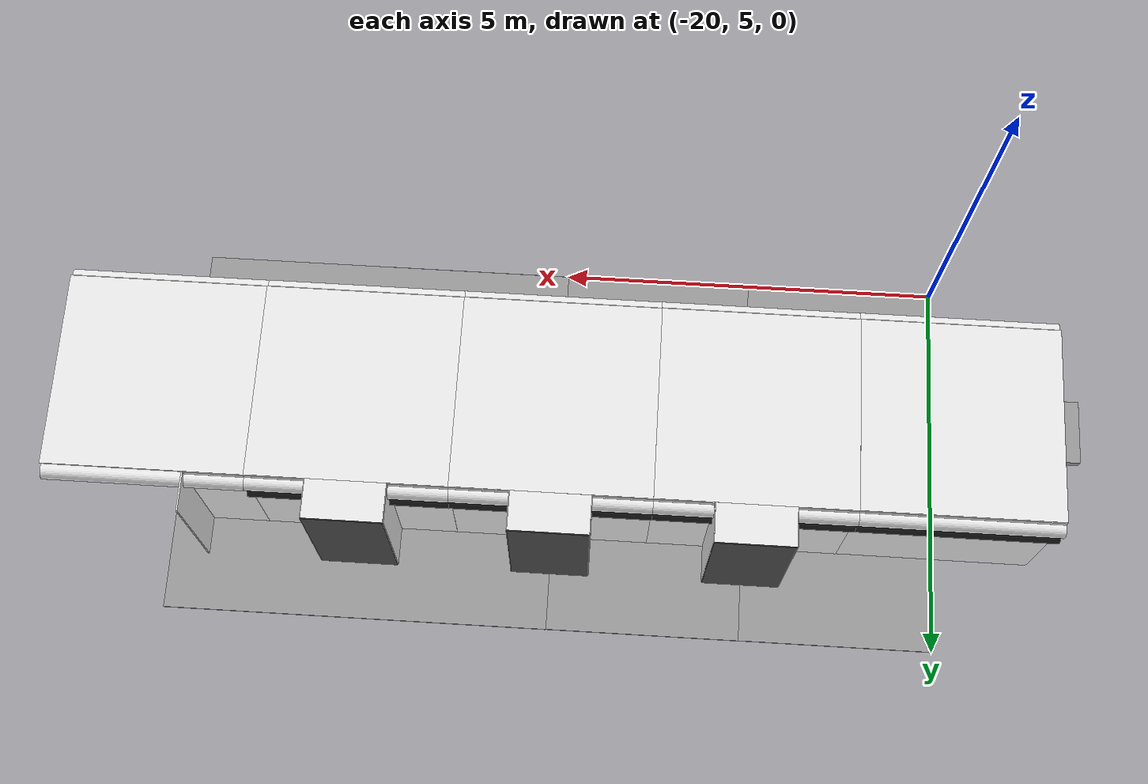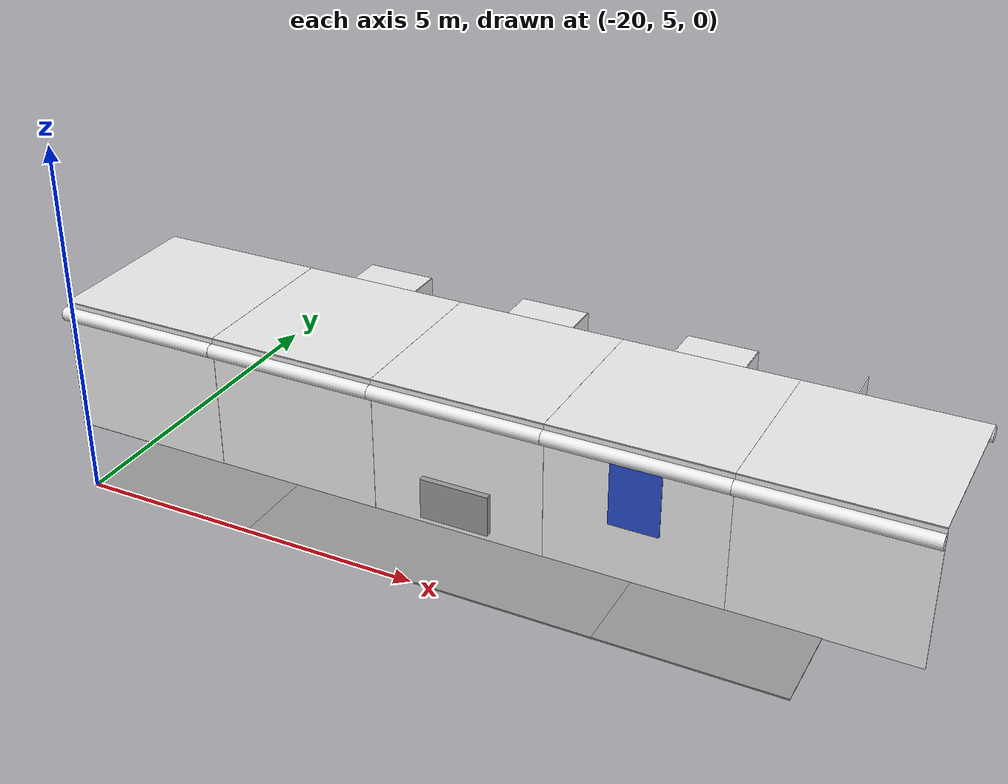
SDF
<sdf version="1.6">
 <world name="default">
  <model name="wall_left_-4_3_0_1">
   <static>1</static>
   <pose>-10.0 6.25 1.0 0.0 0.0 3.14</pose>
   <link name="link">
    <collision name="collision"><geometry><box><size>2.5 0.02 2.0</size></box></geometry></collision>
    <visual name="visual">
     <material>
      <script><name>Gazebo/White</name><uri>file://media/materials/scripts/gazebo.material</uri></script>
     </material>
     <geometry><box><size>2.5 0.02 2.0</size></box></geometry>
    </visual>
   </link>
  </model>
  <model name="wall_top_-4_3_0_1">
   <static>1</static>
   <pose>-10.0 7.5 2.0 1.57 0.0 1.57</pose>
   <link name="link">
    <collision name="collision"><geometry><box><size>2.5 0.02 2.5</size></box></geometry></collision>
    <visual name="visual">
     <material>
      <script><name>Gazebo/White</name><uri>file://media/materials/scripts/gazebo.material</uri></script>
     </material>
     <geometry><box><size>2.5 0.02 2.5</size></box></geometry>
    </visual>
   </link>
  </model>
  <model name="ceiling_1_-4_3_0_1">
   <pose>-10.0 7.5 1.7 0.0 0.0 1.57</pose>
   <link name="link_1">
    <visual name="visual">
     <geometry><box><size>0.8 1 0.1</size></box></geometry>
     <material>
      <script><uri>file://media/materials/scripts/gazebo.material</uri><name>Gazebo/Grey</name></script>
     </material>
    </visual>
    <collision name="collision"><geometry><box><size>0.8 1 0.1</size></box></geometry></collision>
   </link>
   <static>1</static>
  </model>
  <model name="ceiling_1_-4_3_2_1">
   <pose>-11.0 7.5 1.7 0.0 0.0 1.57</pose>
   <link name="link_1">
    <visual name="visual">
     <geometry><box><size>0.8 1 0.1</size></box></geometry>
     <material>
      <script><uri>file://media/materials/scripts/gazebo.material</uri><name>Gazebo/Grey</name></script>
     </material>
    </visual>
    <collision name="collision"><geometry><box><size>0.8 1 0.1</size></box></geometry></collision>
   </link>
   <static>1</static>
  </model>
  <model name="white_pipe_left_-4_3_0_1">
   <static>1</static>
   <pose>-10.0 7.5 1.84 0.0 0.0 1.57</pose>
   <link name="link_0">
    <visual name="visual">
     <pose>-1.3 0 0 1.57 0 0</pose>
     <geometry><cylinder><radius>0.1</radius><length>2.5</length></cylinder></geometry>
     <material>
      <script><uri>file://media/materials/scripts/gazebo.material</uri><name>Gazebo/White</name></script>
     </material>
    </visual>
    <collision name="collision">
     <pose>-1.3 0 0 1.57 0 0</pose>
     <geometry><cylinder><radius>0.1</radius><length>2.5</length></cylinder></geometry>
    </collision>
   </link>
  </model>
  <model name="white_pipe_right_-4_3_0_1">
   <static>1</static>
   <pose>-10.0 7.5 1.84 0.0 0.0 1.57</pose>
   <link name="link_0">
    <visual name="visual">
     <pose>1.3 0 0 1.57 0 0</pose>
     <geometry><cylinder><radius>0.1</radius><length>2.5</length></cylinder></geometry>
     <material>
      <script><uri>file://media/materials/scripts/gazebo.material</uri><name>Gazebo/White</name></script>
     </material>
    </visual>
    <collision name="collision">
     <pose>1.3 0 0 1.57 0 0</pose>
     <geometry><cylinder><radius>0.1</radius><length>2.5</length></cylinder></geometry>
    </collision>
   </link>
  </model>
  <model name="wall_right_front_left_-4_3_0_1">
   <static>1</static>
   <pose>-10.875 8.75 1.0 0.0 0.0 3.14</pose>
   <link name="link">
    <collision name="collision"><geometry><box><size>0.75 0.02 2.0</size></box></geometry></collision>
    <visual name="visual">
     <material>
      <script><name>Gazebo/White</name><uri>file://media/materials/scripts/gazebo.material</uri></script>
     </material>
     <geometry><box><size>0.75 0.02 2.0</size></box></geometry>
    </visual>
   </link>
  </model>
  <model name="wall_right_inside_left_-4_3_0_1">
   <static>1</static>
   <pose>-10.5 9.0 1.0 0.0 0.0 1.57</pose>
   <link name="link">
    <collision name="collision"><geometry><box><size>0.5 0.02 2</size></box></geometry></collision>
    <visual name="visual">
     <material>
      <script><name>Gazebo/White</name><uri>file://media/materials/scripts/gazebo.material</uri></script>
     </material>
     <geometry><box><size>0.5 0.02 2</size></box></geometry>
    </visual>
   </link>
  </model>
  <model name="wall_left_-5_3_0_1">
   <static>1</static>
   <pose>-12.5 6.25 1.0 0.0 0.0 3.14</pose>
   <link name="link">
    <collision name="collision"><geometry><box><size>2.5 0.02 2.0</size></box></geometry></collision>
    <visual name="visual">
     <material>
      <script><name>Gazebo/White</name><uri>file://media/materials/scripts/gazebo.material</uri></script>
     </material>
     <geometry><box><size>2.5 0.02 2.0</size></box></geometry>
    </visual>
   </link>
  </model>
  <model name="wall_top_-5_3_0_1">
   <static>1</static>
   <pose>-12.5 7.5 2.0 1.57 0.0 1.57</pose>
   <link name="link">
    <collision name="collision"><geometry><box><size>2.5 0.02 2.5</size></box></geometry></collision>
    <visual name="visual">
     <material>
      <script><name>Gazebo/White</name><uri>file://media/materials/scripts/gazebo.material</uri></script>
     </material>
     <geometry><box><size>2.5 0.02 2.5</size></box></geometry>
    </visual>
   </link>
  </model>
  <model name="ceiling_1_-5_3_0_1">
   <pose>-12.5 7.5 1.7 0.0 0.0 1.57</pose>
   <link name="link_1">
    <visual name="visual">
     <geometry><box><size>0.8 1 0.1</size></box></geometry>
     <material>
      <script><uri>file://media/materials/scripts/gazebo.material</uri><name>Gazebo/Grey</name></script>
     </material>
    </visual>
    <collision name="collision"><geometry><box><size>0.8 1 0.1</size></box></geometry></collision>
   </link>
   <static>1</static>
  </model>
  <model name="ceiling_1_-5_3_1_1">
   <pose>-11.5 7.5 1.7 0.0 0.0 1.57</pose>
   <link name="link_1">
    <visual name="visual">
     <geometry><box><size>0.8 1 0.1</size></box></geometry>
     <material>
      <script><uri>file://media/materials/scripts/gazebo.material</uri><name>Gazebo/Grey</name></script>
     </material>
    </visual>
    <collision name="collision"><geometry><box><size>0.8 1 0.1</size></box></geometry></collision>
   </link>
   <static>1</static>
  </model>
  <model name="ceiling_1_-5_3_2_1">
   <pose>-13.5 7.5 1.7 0.0 0.0 1.57</pose>
   <link name="link_1">
    <visual name="visual">
     <geometry><box><size>0.8 1 0.1</size></box></geometry>
     <material>
      <script><uri>file://media/materials/scripts/gazebo.material</uri><name>Gazebo/Grey</name></script>
     </material>
    </visual>
    <collision name="collision"><geometry><box><size>0.8 1 0.1</size></box></geometry></collision>
   </link>
   <static>1</static>
  </model>
  <model name="white_pipe_left_-5_3_0_1">
   <static>1</static>
   <pose>-12.5 7.5 1.84 0.0 0.0 1.57</pose>
   <link name="link_0">
    <visual name="visual">
     <pose>-1.3 0 0 1.57 0 0</pose>
     <geometry><cylinder><radius>0.1</radius><length>2.5</length></cylinder></geometry>
     <material>
      <script><uri>file://media/materials/scripts/gazebo.material</uri><name>Gazebo/White</name></script>
     </material>
    </visual>
    <collision name="collision">
     <pose>-1.3 0 0 1.57 0 0</pose>
     <geometry><cylinder><radius>0.1</radius><length>2.5</length></cylinder></geometry>
    </collision>
   </link>
  </model>
  <model name="white_pipe_right_-5_3_0_1">
   <static>1</static>
   <pose>-12.5 7.5 1.84 0.0 0.0 1.57</pose>
   <link name="link_0">
    <visual name="visual">
     <pose>1.3 0 0 1.57 0 0</pose>
     <geometry><cylinder><radius>0.1</radius><length>2.5</length></cylinder></geometry>
     <material>
      <script><uri>file://media/materials/scripts/gazebo.material</uri><name>Gazebo/White</name></script>
     </material>
    </visual>
    <collision name="collision">
     <pose>1.3 0 0 1.57 0 0</pose>
     <geometry><cylinder><radius>0.1</radius><length>2.5</length></cylinder></geometry>
    </collision>
   </link>
  </model>
  <model name="black_pipe_right_-5_3_0_1">
   <static>1</static>
   <pose>-12.5 7.5 1.84 0.0 0.0 1.57</pose>
   <link name="link_0">
    <visual name="visual">
     <pose>1.3 0 -0.25 1.57 0 0</pose>
     <geometry><cylinder><radius>0.1</radius><length>2.5</length></cylinder></geometry>
     <material>
      <script><uri>file://media/materials/scripts/gazebo.material</uri><name>Gazebo/Black</name></script>
     </material>
    </visual>
    <collision name="collision">
     <pose>1.3 0 -0.25 1.57 0 0</pose>
     <geometry><cylinder><radius>0.1</radius><length>2.5</length></cylinder></geometry>
    </collision>
   </link>
  </model>
  <model name="grey_pipe_right_-5_3_0_1">
   <static>1</static>
   <pose>-12.5 7.5 1.84 0.0 0.0 1.57</pose>
   <link name="link_0">
    <visual name="visual">
     <pose>0.7 0 0 1.57 0 0</pose>
     <geometry><cylinder><radius>0.02</radius><length>2.5</length></cylinder></geometry>
     <material>
      <script><uri>file://media/materials/scripts/gazebo.material</uri><name>Gazebo/Grey</name></script>
     </material>
    </visual>
    <collision name="collision">
     <pose>0.7 0 0 1.57 0 0</pose>
     <geometry><cylinder><radius>0.02</radius><length>2.5</length></cylinder></geometry>
    </collision>
   </link>
  </model>
  <model name="red_pipe_right_-5_3_0_1">
   <static>1</static>
   <pose>-12.5 7.5 1.84 0.0 0.0 1.57</pose>
   <link name="link_0">
    <visual name="visual">
     <pose>0.85 0 0 1.57 0 0</pose>
     <geometry><cylinder><radius>0.02</radius><length>2.5</length></cylinder></geometry>
     <material>
      <script><uri>file://media/materials/scripts/gazebo.material</uri><name>Gazebo/Red</name></script>
     </material>
    </visual>
    <collision name="collision">
     <pose>0.85 0 0 1.57 0 0</pose>
     <geometry><cylinder><radius>0.02</radius><length>2.5</length></cylinder></geometry>
    </collision>
   </link>
  </model>
  <model name="blue_pipe_right_-5_3_0_1">
   <static>1</static>
   <pose>-12.5 7.5 1.84 0.0 0.0 1.57</pose>
   <link name="link_0">
    <visual name="visual">
     <pose>1 0 0 1.57 0 0</pose>
     <geometry><cylinder><radius>0.02</radius><length>2.5</length></cylinder></geometry>
     <material>
      <script><uri>file://media/materials/scripts/gazebo.material</uri><name>Gazebo/Blue</name></script>
     </material>
    </visual>
    <collision name="collision">
     <pose>1 0 0 1.57 0 0</pose>
     <geometry><cylinder><radius>0.02</radius><length>2.5</length></cylinder></geometry>
    </collision>
   </link>
  </model>
  <model name="panel_-5_3_0_1">
   <static>1</static>
   <pose>-12.5 6.25 1.3 0.0 0.0 1.57</pose>
   <link name="link">
    <collision name="collision"><geometry><box><size>0.04 0.7 1</size></box></geometry></collision>
    <visual name="visual">
     <material>
      <script><name>Gazebo/Blue</name><uri>file://media/materials/scripts/gazebo.material</uri></script>
     </material>
     <geometry><box><size>0.04 0.7 1</size></box></geometry>
    </visual>
   </link>
  </model>
  <model name="wall_right_front_left_-5_3_0_1">
   <static>1</static>
   <pose>-13.375 8.75 1.0 0.0 0.0 3.14</pose>
   <link name="link">
    <collision name="collision"><geometry><box><size>0.75 0.02 2.0</size></box></geometry></collision>
    <visual name="visual">
     <material>
      <script><name>Gazebo/White</name><uri>file://media/materials/scripts/gazebo.material</uri></script>
     </material>
     <geometry><box><size>0.75 0.02 2.0</size></box></geometry>
    </visual>
   </link>
  </model>
  <model name="wall_right_front_right_-5_3_0_1">
   <static>1</static>
   <pose>-11.625 8.75 1.0 0.0 0.0 3.14</pose>
   <link name="link">
    <collision name="collision"><geometry><box><size>0.75 0.02 2.0</size></box></geometry></collision>
    <visual name="visual">
     <material>
      <script><name>Gazebo/White</name><uri>file://media/materials/scripts/gazebo.material</uri></script>
     </material>
     <geometry><box><size>0.75 0.02 2.0</size></box></geometry>
    </visual>
   </link>
  </model>
  <model name="wall_right_front_up_-5_3_0_1">
   <static>1</static>
   <pose>-12.5 8.75 2.0 0.0 0.0 3.14</pose>
   <link name="link">
    <collision name="collision"><geometry><box><size>1.0 0.02 0.001</size></box></geometry></collision>
    <visual name="visual">
     <material>
      <script><name>Gazebo/White</name><uri>file://media/materials/scripts/gazebo.material</uri></script>
     </material>
     <geometry><box><size>1.0 0.02 0.001</size></box></geometry>
    </visual>
   </link>
  </model>
  <model name="wall_right_inside_back_-5_3_0_1">
   <static>1</static>
   <pose>-12.5 9.25 1.0 0.0 0.0 3.14</pose>
   <link name="link">
    <collision name="collision"><geometry><box><size>1 0.02 2</size></box></geometry></collision>
    <visual name="visual">
     <material>
      <script><name>Gazebo/DarkGrey</name><uri>file://media/materials/scripts/gazebo.material</uri></script>
     </material>
     <geometry><box><size>1 0.02 2</size></box></geometry>
    </visual>
   </link>
  </model>
  <model name="wall_right_inside_left_-5_3_0_1">
   <static>1</static>
   <pose>-13.0 9.0 1.0 0.0 0.0 1.57</pose>
   <link name="link">
    <collision name="collision"><geometry><box><size>0.5 0.02 2</size></box></geometry></collision>
    <visual name="visual">
     <material>
      <script><name>Gazebo/White</name><uri>file://media/materials/scripts/gazebo.material</uri></script>
     </material>
     <geometry><box><size>0.5 0.02 2</size></box></geometry>
    </visual>
   </link>
  </model>
  <model name="wall_right_inside_right_-5_3_0_1">
   <static>1</static>
   <pose>-12.0 9.0 1.0 0.0 0.0 1.57</pose>
   <link name="link">
    <collision name="collision"><geometry><box><size>0.5 0.02 2</size></box></geometry></collision>
    <visual name="visual">
     <material>
      <script><name>Gazebo/White</name><uri>file://media/materials/scripts/gazebo.material</uri></script>
     </material>
     <geometry><box><size>0.5 0.02 2</size></box></geometry>
    </visual>
   </link>
  </model>
  <model name="wall_right_inside_top_-5_3_0_1">
   <static>1</static>
   <pose>-12.5 9.0 2.0 1.57 0.0 3.14</pose>
   <link name="link">
    <collision name="collision"><geometry><box><size>1 0.02 0.5</size></box></geometry></collision>
    <visual name="visual">
     <material>
      <script><name>Gazebo/White</name><uri>file://media/materials/scripts/gazebo.material</uri></script>
     </material>
     <geometry><box><size>1 0.02 0.5</size></box></geometry>
    </visual>
   </link>
  </model>
  <model name="wall_bottom_-5_3_0_1">
   <static>1</static>
   <pose>-12.5 7.5 0.0 0.0 0.0 1.57</pose>
   <link name="link">
    <collision name="collision"><geometry><box><size>5.0 5.0 0.02</size></box></geometry></collision>
    <visual name="visual">
     <material>
      <script><name>Gazebo/Grey</name><uri>file://media/materials/scripts/gazebo.material</uri></script>
     </material>
     <geometry><box><size>5.0 5.0 0.02</size></box></geometry>
    </visual>
   </link>
  </model>
  <model name="wall_left_-6_3_0_1">
   <static>1</static>
   <pose>-15.0 6.25 1.0 0.0 0.0 3.14</pose>
   <link name="link">
    <collision name="collision"><geometry><box><size>2.5 0.02 2.0</size></box></geometry></collision>
    <visual name="visual">
     <material>
      <script><name>Gazebo/White</name><uri>file://media/materials/scripts/gazebo.material</uri></script>
     </material>
     <geometry><box><size>2.5 0.02 2.0</size></box></geometry>
    </visual>
   </link>
  </model>
  <model name="wall_top_-6_3_0_1">
   <static>1</static>
   <pose>-15.0 7.5 2.0 1.57 0.0 1.57</pose>
   <link name="link">
    <collision name="collision"><geometry><box><size>2.5 0.02 2.5</size></box></geometry></collision>
    <visual name="visual">
     <material>
      <script><name>Gazebo/White</name><uri>file://media/materials/scripts/gazebo.material</uri></script>
     </material>
     <geometry><box><size>2.5 0.02 2.5</size></box></geometry>
    </visual>
   </link>
  </model>
  <model name="ceiling_1_-6_3_0_1">
   <pose>-15.0 7.5 1.7 0.0 0.0 1.57</pose>
   <link name="link_1">
    <visual name="visual">
     <geometry><box><size>0.8 1 0.1</size></box></geometry>
     <material>
      <script><uri>file://media/materials/scripts/gazebo.material</uri><name>Gazebo/Grey</name></script>
     </material>
    </visual>
    <collision name="collision"><geometry><box><size>0.8 1 0.1</size></box></geometry></collision>
   </link>
   <static>1</static>
  </model>
  <model name="ceiling_1_-6_3_1_1">
   <pose>-14.0 7.5 1.7 0.0 0.0 1.57</pose>
   <link name="link_1">
    <visual name="visual">
     <geometry><box><size>0.8 1 0.1</size></box></geometry>
     <material>
      <script><uri>file://media/materials/scripts/gazebo.material</uri><name>Gazebo/Grey</name></script>
     </material>
    </visual>
    <collision name="collision"><geometry><box><size>0.8 1 0.1</size></box></geometry></collision>
   </link>
   <static>1</static>
  </model>
  <model name="ceiling_1_-6_3_2_1">
   <pose>-16.0 7.5 1.7 0.0 0.0 1.57</pose>
   <link name="link_1">
    <visual name="visual">
     <geometry><box><size>0.8 1 0.1</size></box></geometry>
     <material>
      <script><uri>file://media/materials/scripts/gazebo.material</uri><name>Gazebo/Grey</name></script>
     </material>
    </visual>
    <collision name="collision"><geometry><box><size>0.8 1 0.1</size></box></geometry></collision>
   </link>
   <static>1</static>
  </model>
  <model name="white_pipe_left_-6_3_0_1">
   <static>1</static>
   <pose>-15.0 7.5 1.84 0.0 0.0 1.57</pose>
   <link name="link_0">
    <visual name="visual">
     <pose>-1.3 0 0 1.57 0 0</pose>
     <geometry><cylinder><radius>0.1</radius><length>2.5</length></cylinder></geometry>
     <material>
      <script><uri>file://media/materials/scripts/gazebo.material</uri><name>Gazebo/White</name></script>
     </material>
    </visual>
    <collision name="collision">
     <pose>-1.3 0 0 1.57 0 0</pose>
     <geometry><cylinder><radius>0.1</radius><length>2.5</length></cylinder></geometry>
    </collision>
   </link>
  </model>
  <model name="white_pipe_right_-6_3_0_1">
   <static>1</static>
   <pose>-15.0 7.5 1.84 0.0 0.0 1.57</pose>
   <link name="link_0">
    <visual name="visual">
     <pose>1.3 0 0 1.57 0 0</pose>
     <geometry><cylinder><radius>0.1</radius><length>2.5</length></cylinder></geometry>
     <material>
      <script><uri>file://media/materials/scripts/gazebo.material</uri><name>Gazebo/White</name></script>
     </material>
    </visual>
    <collision name="collision">
     <pose>1.3 0 0 1.57 0 0</pose>
     <geometry><cylinder><radius>0.1</radius><length>2.5</length></cylinder></geometry>
    </collision>
   </link>
  </model>
  <model name="black_pipe_right_-6_3_0_1">
   <static>1</static>
   <pose>-15.0 7.5 1.84 0.0 0.0 1.57</pose>
   <link name="link_0">
    <visual name="visual">
     <pose>1.3 0 -0.25 1.57 0 0</pose>
     <geometry><cylinder><radius>0.1</radius><length>2.5</length></cylinder></geometry>
     <material>
      <script><uri>file://media/materials/scripts/gazebo.material</uri><name>Gazebo/Black</name></script>
     </material>
    </visual>
    <collision name="collision">
     <pose>1.3 0 -0.25 1.57 0 0</pose>
     <geometry><cylinder><radius>0.1</radius><length>2.5</length></cylinder></geometry>
    </collision>
   </link>
  </model>
  <model name="grey_pipe_right_-6_3_0_1">
   <static>1</static>
   <pose>-15.0 7.5 1.84 0.0 0.0 1.57</pose>
   <link name="link_0">
    <visual name="visual">
     <pose>0.7 0 0 1.57 0 0</pose>
     <geometry><cylinder><radius>0.02</radius><length>2.5</length></cylinder></geometry>
     <material>
      <script><uri>file://media/materials/scripts/gazebo.material</uri><name>Gazebo/Grey</name></script>
     </material>
    </visual>
    <collision name="collision">
     <pose>0.7 0 0 1.57 0 0</pose>
     <geometry><cylinder><radius>0.02</radius><length>2.5</length></cylinder></geometry>
    </collision>
   </link>
  </model>
  <model name="red_pipe_right_-6_3_0_1">
   <static>1</static>
   <pose>-15.0 7.5 1.84 0.0 0.0 1.57</pose>
   <link name="link_0">
    <visual name="visual">
     <pose>0.85 0 0 1.57 0 0</pose>
     <geometry><cylinder><radius>0.02</radius><length>2.5</length></cylinder></geometry>
     <material>
      <script><uri>file://media/materials/scripts/gazebo.material</uri><name>Gazebo/Red</name></script>
     </material>
    </visual>
    <collision name="collision">
     <pose>0.85 0 0 1.57 0 0</pose>
     <geometry><cylinder><radius>0.02</radius><length>2.5</length></cylinder></geometry>
    </collision>
   </link>
  </model>
  <model name="blue_pipe_right_-6_3_0_1">
   <static>1</static>
   <pose>-15.0 7.5 1.84 0.0 0.0 1.57</pose>
   <link name="link_0">
    <visual name="visual">
     <pose>1 0 0 1.57 0 0</pose>
     <geometry><cylinder><radius>0.02</radius><length>2.5</length></cylinder></geometry>
     <material>
      <script><uri>file://media/materials/scripts/gazebo.material</uri><name>Gazebo/Blue</name></script>
     </material>
    </visual>
    <collision name="collision">
     <pose>1 0 0 1.57 0 0</pose>
     <geometry><cylinder><radius>0.02</radius><length>2.5</length></cylinder></geometry>
    </collision>
   </link>
  </model>
  <model name="wall_bottom_-6_3_0_1">
   <static>1</static>
   <pose>-15.0 7.5 0.0 0.0 0.0 1.57</pose>
   <link name="link">
    <collision name="collision"><geometry><box><size>5.0 5.0 0.02</size></box></geometry></collision>
    <visual name="visual">
     <material>
      <script><name>Gazebo/Grey</name><uri>file://media/materials/scripts/gazebo.material</uri></script>
     </material>
     <geometry><box><size>5.0 5.0 0.02</size></box></geometry>
    </visual>
   </link>
  </model>
  <model name="wall_right_front_left_-6_3_0_1">
   <static>1</static>
   <pose>-15.875 8.75 1.0 0.0 0.0 3.14</pose>
   <link name="link">
    <collision name="collision"><geometry><box><size>0.75 0.02 2.0</size></box></geometry></collision>
    <visual name="visual">
     <material>
      <script><name>Gazebo/White</name><uri>file://media/materials/scripts/gazebo.material</uri></script>
     </material>
     <geometry><box><size>0.75 0.02 2.0</size></box></geometry>
    </visual>
   </link>
  </model>
  <model name="wall_right_front_right_-6_3_0_1">
   <static>1</static>
   <pose>-14.125 8.75 1.0 0.0 0.0 3.14</pose>
   <link name="link">
    <collision name="collision"><geometry><box><size>0.75 0.02 2.0</size></box></geometry></collision>
    <visual name="visual">
     <material>
      <script><name>Gazebo/White</name><uri>file://media/materials/scripts/gazebo.material</uri></script>
     </material>
     <geometry><box><size>0.75 0.02 2.0</size></box></geometry>
    </visual>
   </link>
  </model>
  <model name="wall_right_front_up_-6_3_0_1">
   <static>1</static>
   <pose>-15.0 8.75 2.0 0.0 0.0 3.14</pose>
   <link name="link">
    <collision name="collision"><geometry><box><size>1.0 0.02 0.001</size></box></geometry></collision>
    <visual name="visual">
     <material>
      <script><name>Gazebo/White</name><uri>file://media/materials/scripts/gazebo.material</uri></script>
     </material>
     <geometry><box><size>1.0 0.02 0.001</size></box></geometry>
    </visual>
   </link>
  </model>
  <model name="wall_right_inside_back_-6_3_0_1">
   <static>1</static>
   <pose>-15.0 9.25 1.0 0.0 0.0 3.14</pose>
   <link name="link">
    <collision name="collision"><geometry><box><size>1 0.02 2</size></box></geometry></collision>
    <visual name="visual">
     <material>
      <script><name>Gazebo/DarkGrey</name><uri>file://media/materials/scripts/gazebo.material</uri></script>
     </material>
     <geometry><box><size>1 0.02 2</size></box></geometry>
    </visual>
   </link>
  </model>
  <model name="wall_right_inside_left_-6_3_0_1">
   <static>1</static>
   <pose>-15.5 9.0 1.0 0.0 0.0 1.57</pose>
   <link name="link">
    <collision name="collision"><geometry><box><size>0.5 0.02 2</size></box></geometry></collision>
    <visual name="visual">
     <material>
      <script><name>Gazebo/White</name><uri>file://media/materials/scripts/gazebo.material</uri></script>
     </material>
     <geometry><box><size>0.5 0.02 2</size></box></geometry>
    </visual>
   </link>
  </model>
  <model name="wall_right_inside_right_-6_3_0_1">
   <static>1</static>
   <pose>-14.5 9.0 1.0 0.0 0.0 1.57</pose>
   <link name="link">
    <collision name="collision"><geometry><box><size>0.5 0.02 2</size></box></geometry></collision>
    <visual name="visual">
     <material>
      <script><name>Gazebo/White</name><uri>file://media/materials/scripts/gazebo.material</uri></script>
     </material>
     <geometry><box><size>0.5 0.02 2</size></box></geometry>
    </visual>
   </link>
  </model>
  <model name="wall_right_inside_top_-6_3_0_1">
   <static>1</static>
   <pose>-15.0 9.0 2.0 1.57 0.0 3.14</pose>
   <link name="link">
    <collision name="collision"><geometry><box><size>1 0.02 0.5</size></box></geometry></collision>
    <visual name="visual">
     <material>
      <script><name>Gazebo/White</name><uri>file://media/materials/scripts/gazebo.material</uri></script>
     </material>
     <geometry><box><size>1 0.02 0.5</size></box></geometry>
    </visual>
   </link>
  </model>
  <model name="panel_-6_3_0_1">
   <static>1</static>
   <pose>-15.0 6.25 0.44 0.0 0.0 1.57</pose>
   <link name="link">
    <collision name="collision"><geometry><box><size>0.2 1 0.6</size></box></geometry></collision>
    <visual name="visual">
     <material>
      <script><name>Gazebo/Grey</name><uri>file://media/materials/scripts/gazebo.material</uri></script>
     </material>
     <geometry><box><size>0.2 1 0.6</size></box></geometry>
    </visual>
   </link>
  </model>
  <model name="wall_left_-7_3_0_1">
   <static>1</static>
   <pose>-17.5 6.25 1.0 0.0 0.0 3.14</pose>
   <link name="link">
    <collision name="collision"><geometry><box><size>2.5 0.02 2.0</size></box></geometry></collision>
    <visual name="visual">
     <material>
      <script><name>Gazebo/White</name><uri>file://media/materials/scripts/gazebo.material</uri></script>
     </material>
     <geometry><box><size>2.5 0.02 2.0</size></box></geometry>
    </visual>
   </link>
  </model>
  <model name="wall_top_-7_3_0_1">
   <static>1</static>
   <pose>-17.5 7.5 2.0 1.57 0.0 1.57</pose>
   <link name="link">
    <collision name="collision"><geometry><box><size>2.5 0.02 2.5</size></box></geometry></collision>
    <visual name="visual">
     <material>
      <script><name>Gazebo/White</name><uri>file://media/materials/scripts/gazebo.material</uri></script>
     </material>
     <geometry><box><size>2.5 0.02 2.5</size></box></geometry>
    </visual>
   </link>
  </model>
  <model name="ceiling_1_-7_3_0_1">
   <pose>-17.5 7.5 1.7 0.0 0.0 1.57</pose>
   <link name="link_1">
    <visual name="visual">
     <geometry><box><size>0.8 1 0.1</size></box></geometry>
     <material>
      <script><uri>file://media/materials/scripts/gazebo.material</uri><name>Gazebo/Grey</name></script>
     </material>
    </visual>
    <collision name="collision"><geometry><box><size>0.8 1 0.1</size></box></geometry></collision>
   </link>
   <static>1</static>
  </model>
  <model name="ceiling_1_-7_3_1_1">
   <pose>-16.5 7.5 1.7 0.0 0.0 1.57</pose>
   <link name="link_1">
    <visual name="visual">
     <geometry><box><size>0.8 1 0.1</size></box></geometry>
     <material>
      <script><uri>file://media/materials/scripts/gazebo.material</uri><name>Gazebo/Grey</name></script>
     </material>
    </visual>
    <collision name="collision"><geometry><box><size>0.8 1 0.1</size></box></geometry></collision>
   </link>
   <static>1</static>
  </model>
  <model name="ceiling_1_-7_3_2_1">
   <pose>-18.5 7.5 1.7 0.0 0.0 1.57</pose>
   <link name="link_1">
    <visual name="visual">
     <geometry><box><size>0.8 1 0.1</size></box></geometry>
     <material>
      <script><uri>file://media/materials/scripts/gazebo.material</uri><name>Gazebo/Grey</name></script>
     </material>
    </visual>
    <collision name="collision"><geometry><box><size>0.8 1 0.1</size></box></geometry></collision>
   </link>
   <static>1</static>
  </model>
  <model name="white_pipe_left_-7_3_0_1">
   <static>1</static>
   <pose>-17.5 7.5 1.84 0.0 0.0 1.57</pose>
   <link name="link_0">
    <visual name="visual">
     <pose>-1.3 0 0 1.57 0 0</pose>
     <geometry><cylinder><radius>0.1</radius><length>2.5</length></cylinder></geometry>
     <material>
      <script><uri>file://media/materials/scripts/gazebo.material</uri><name>Gazebo/White</name></script>
     </material>
    </visual>
    <collision name="collision">
     <pose>-1.3 0 0 1.57 0 0</pose>
     <geometry><cylinder><radius>0.1</radius><length>2.5</length></cylinder></geometry>
    </collision>
   </link>
  </model>
  <model name="white_pipe_right_-7_3_0_1">
   <static>1</static>
   <pose>-17.5 7.5 1.84 0.0 0.0 1.57</pose>
   <link name="link_0">
    <visual name="visual">
     <pose>1.3 0 0 1.57 0 0</pose>
     <geometry><cylinder><radius>0.1</radius><length>2.5</length></cylinder></geometry>
     <material>
      <script><uri>file://media/materials/scripts/gazebo.material</uri><name>Gazebo/White</name></script>
     </material>
    </visual>
    <collision name="collision">
     <pose>1.3 0 0 1.57 0 0</pose>
     <geometry><cylinder><radius>0.1</radius><length>2.5</length></cylinder></geometry>
    </collision>
   </link>
  </model>
  <model name="black_pipe_right_-7_3_0_1">
   <static>1</static>
   <pose>-17.5 7.5 1.84 0.0 0.0 1.57</pose>
   <link name="link_0">
    <visual name="visual">
     <pose>1.3 0 -0.25 1.57 0 0</pose>
     <geometry><cylinder><radius>0.1</radius><length>2.5</length></cylinder></geometry>
     <material>
      <script><uri>file://media/materials/scripts/gazebo.material</uri><name>Gazebo/Black</name></script>
     </material>
    </visual>
    <collision name="collision">
     <pose>1.3 0 -0.25 1.57 0 0</pose>
     <geometry><cylinder><radius>0.1</radius><length>2.5</length></cylinder></geometry>
    </collision>
   </link>
  </model>
  <model name="grey_pipe_right_-7_3_0_1">
   <static>1</static>
   <pose>-17.5 7.5 1.84 0.0 0.0 1.57</pose>
   <link name="link_0">
    <visual name="visual">
     <pose>0.7 0 0 1.57 0 0</pose>
     <geometry><cylinder><radius>0.02</radius><length>2.5</length></cylinder></geometry>
     <material>
      <script><uri>file://media/materials/scripts/gazebo.material</uri><name>Gazebo/Grey</name></script>
     </material>
    </visual>
    <collision name="collision">
     <pose>0.7 0 0 1.57 0 0</pose>
     <geometry><cylinder><radius>0.02</radius><length>2.5</length></cylinder></geometry>
    </collision>
   </link>
  </model>
  <model name="red_pipe_right_-7_3_0_1">
   <static>1</static>
   <pose>-17.5 7.5 1.84 0.0 0.0 1.57</pose>
   <link name="link_0">
    <visual name="visual">
     <pose>0.85 0 0 1.57 0 0</pose>
     <geometry><cylinder><radius>0.02</radius><length>2.5</length></cylinder></geometry>
     <material>
      <script><uri>file://media/materials/scripts/gazebo.material</uri><name>Gazebo/Red</name></script>
     </material>
    </visual>
    <collision name="collision">
     <pose>0.85 0 0 1.57 0 0</pose>
     <geometry><cylinder><radius>0.02</radius><length>2.5</length></cylinder></geometry>
    </collision>
   </link>
  </model>
  <model name="blue_pipe_right_-7_3_0_1">
   <static>1</static>
   <pose>-17.5 7.5 1.84 0.0 0.0 1.57</pose>
   <link name="link_0">
    <visual name="visual">
     <pose>1 0 0 1.57 0 0</pose>
     <geometry><cylinder><radius>0.02</radius><length>2.5</length></cylinder></geometry>
     <material>
      <script><uri>file://media/materials/scripts/gazebo.material</uri><name>Gazebo/Blue</name></script>
     </material>
    </visual>
    <collision name="collision">
     <pose>1 0 0 1.57 0 0</pose>
     <geometry><cylinder><radius>0.02</radius><length>2.5</length></cylinder></geometry>
    </collision>
   </link>
  </model>
  <model name="wall_right_front_left_-7_3_0_1">
   <static>1</static>
   <pose>-18.375 8.75 1.0 0.0 0.0 3.14</pose>
   <link name="link">
    <collision name="collision"><geometry><box><size>0.75 0.02 2.0</size></box></geometry></collision>
    <visual name="visual">
     <material>
      <script><name>Gazebo/White</name><uri>file://media/materials/scripts/gazebo.material</uri></script>
     </material>
     <geometry><box><size>0.75 0.02 2.0</size></box></geometry>
    </visual>
   </link>
  </model>
  <model name="wall_right_front_right_-7_3_0_1">
   <static>1</static>
   <pose>-16.625 8.75 1.0 0.0 0.0 3.14</pose>
   <link name="link">
    <collision name="collision"><geometry><box><size>0.75 0.02 2.0</size></box></geometry></collision>
    <visual name="visual">
     <material>
      <script><name>Gazebo/White</name><uri>file://media/materials/scripts/gazebo.material</uri></script>
     </material>
     <geometry><box><size>0.75 0.02 2.0</size></box></geometry>
    </visual>
   </link>
  </model>
  <model name="wall_right_front_up_-7_3_0_1">
   <static>1</static>
   <pose>-17.5 8.75 2.0 0.0 0.0 3.14</pose>
   <link name="link">
    <collision name="collision"><geometry><box><size>1.0 0.02 0.001</size></box></geometry></collision>
    <visual name="visual">
     <material>
      <script><name>Gazebo/White</name><uri>file://media/materials/scripts/gazebo.material</uri></script>
     </material>
     <geometry><box><size>1.0 0.02 0.001</size></box></geometry>
    </visual>
   </link>
  </model>
  <model name="wall_right_inside_back_-7_3_0_1">
   <static>1</static>
   <pose>-17.5 9.25 1.0 0.0 0.0 3.14</pose>
   <link name="link">
    <collision name="collision"><geometry><box><size>1 0.02 2</size></box></geometry></collision>
    <visual name="visual">
     <material>
      <script><name>Gazebo/DarkGrey</name><uri>file://media/materials/scripts/gazebo.material</uri></script>
     </material>
     <geometry><box><size>1 0.02 2</size></box></geometry>
    </visual>
   </link>
  </model>
  <model name="wall_right_inside_left_-7_3_0_1">
   <static>1</static>
   <pose>-18.0 9.0 1.0 0.0 0.0 1.57</pose>
   <link name="link">
    <collision name="collision"><geometry><box><size>0.5 0.02 2</size></box></geometry></collision>
    <visual name="visual">
     <material>
      <script><name>Gazebo/White</name><uri>file://media/materials/scripts/gazebo.material</uri></script>
     </material>
     <geometry><box><size>0.5 0.02 2</size></box></geometry>
    </visual>
   </link>
  </model>
  <model name="wall_right_inside_right_-7_3_0_1">
   <static>1</static>
   <pose>-17.0 9.0 1.0 0.0 0.0 1.57</pose>
   <link name="link">
    <collision name="collision"><geometry><box><size>0.5 0.02 2</size></box></geometry></collision>
    <visual name="visual">
     <material>
      <script><name>Gazebo/White</name><uri>file://media/materials/scripts/gazebo.material</uri></script>
     </material>
     <geometry><box><size>0.5 0.02 2</size></box></geometry>
    </visual>
   </link>
  </model>
  <model name="wall_right_inside_top_-7_3_0_1">
   <static>1</static>
   <pose>-17.5 9.0 2.0 1.57 0.0 3.14</pose>
   <link name="link">
    <collision name="collision"><geometry><box><size>1 0.02 0.5</size></box></geometry></collision>
    <visual name="visual">
     <material>
      <script><name>Gazebo/White</name><uri>file://media/materials/scripts/gazebo.material</uri></script>
     </material>
     <geometry><box><size>1 0.02 0.5</size></box></geometry>
    </visual>
   </link>
  </model>
  <model name="wall_bottom_-7_3_0_1">
   <static>1</static>
   <pose>-17.5 7.5 0.0 0.0 0.0 1.57</pose>
   <link name="link">
    <collision name="collision"><geometry><box><size>5.0 5.0 0.02</size></box></geometry></collision>
    <visual name="visual">
     <material>
      <script><name>Gazebo/Grey</name><uri>file://media/materials/scripts/gazebo.material</uri></script>
     </material>
     <geometry><box><size>5.0 5.0 0.02</size></box></geometry>
    </visual>
   </link>
  </model>
  <model name="wall_right_-8_3_0_4">
   <static>1</static>
   <pose>-20.0 8.75 1.0 0.0 0.0 3.14</pose>
   <link name="link">
    <collision name="collision"><geometry><box><size>2.5 0.02 2.0</size></box></geometry></collision>
    <visual name="visual">
     <material>
      <script><name>Gazebo/White</name><uri>file://media/materials/scripts/gazebo.material</uri></script>
     </material>
     <geometry><box><size>2.5 0.02 2.0</size></box></geometry>
    </visual>
   </link>
  </model>
  <model name="wall_left_-8_3_0_4">
   <static>1</static>
   <pose>-20.0 6.25 1.0 0.0 0.0 3.14</pose>
   <link name="link">
    <collision name="collision"><geometry><box><size>2.5 0.02 2.0</size></box></geometry></collision>
    <visual name="visual">
     <material>
      <script><name>Gazebo/White</name><uri>file://media/materials/scripts/gazebo.material</uri></script>
     </material>
     <geometry><box><size>2.5 0.02 2.0</size></box></geometry>
    </visual>
   </link>
  </model>
  <model name="wall_top_-8_3_0_4">
   <static>1</static>
   <pose>-20.0 7.5 2.0 1.57 0.0 1.57</pose>
   <link name="link">
    <collision name="collision"><geometry><box><size>2.5 0.02 2.5</size></box></geometry></collision>
    <visual name="visual">
     <material>
      <script><name>Gazebo/White</name><uri>file://media/materials/scripts/gazebo.material</uri></script>
     </material>
     <geometry><box><size>2.5 0.02 2.5</size></box></geometry>
    </visual>
   </link>
  </model>
  <model name="ceiling_1_-8_3_0_4">
   <pose>-20.0 7.5 1.7 0.0 0.0 1.57</pose>
   <link name="link_1">
    <visual name="visual">
     <geometry><box><size>0.8 1 0.1</size></box></geometry>
     <material>
      <script><uri>file://media/materials/scripts/gazebo.material</uri><name>Gazebo/Grey</name></script>
     </material>
    </visual>
    <collision name="collision"><geometry><box><size>0.8 1 0.1</size></box></geometry></collision>
   </link>
   <static>1</static>
  </model>
  <model name="ceiling_1_-8_3_1_4">
   <pose>-19.0 7.5 1.7 0.0 0.0 1.57</pose>
   <link name="link_1">
    <visual name="visual">
     <geometry><box><size>0.8 1 0.1</size></box></geometry>
     <material>
      <script><uri>file://media/materials/scripts/gazebo.material</uri><name>Gazebo/Grey</name></script>
     </material>
    </visual>
    <collision name="collision"><geometry><box><size>0.8 1 0.1</size></box></geometry></collision>
   </link>
   <static>1</static>
  </model>
  <model name="ceiling_1_-8_3_2_4">
   <pose>-21.0 7.5 1.7 0.0 0.0 1.57</pose>
   <link name="link_1">
    <visual name="visual">
     <geometry><box><size>0.8 1 0.1</size></box></geometry>
     <material>
      <script><uri>file://media/materials/scripts/gazebo.material</uri><name>Gazebo/Grey</name></script>
     </material>
    </visual>
    <collision name="collision"><geometry><box><size>0.8 1 0.1</size></box></geometry></collision>
   </link>
   <static>1</static>
  </model>
  <model name="white_pipe_left_-8_3_0_4">
   <static>1</static>
   <pose>-20.0 7.5 1.84 0.0 0.0 1.57</pose>
   <link name="link_0">
    <visual name="visual">
     <pose>-1.3 0 0 1.57 0 0</pose>
     <geometry><cylinder><radius>0.1</radius><length>2.5</length></cylinder></geometry>
     <material>
      <script><uri>file://media/materials/scripts/gazebo.material</uri><name>Gazebo/White</name></script>
     </material>
    </visual>
    <collision name="collision">
     <pose>-1.3 0 0 1.57 0 0</pose>
     <geometry><cylinder><radius>0.1</radius><length>2.5</length></cylinder></geometry>
    </collision>
   </link>
  </model>
  <model name="white_pipe_right_-8_3_0_4">
   <static>1</static>
   <pose>-20.0 7.5 1.84 0.0 0.0 1.57</pose>
   <link name="link_0">
    <visual name="visual">
     <pose>1.3 0 0 1.57 0 0</pose>
     <geometry><cylinder><radius>0.1</radius><length>2.5</length></cylinder></geometry>
     <material>
      <script><uri>file://media/materials/scripts/gazebo.material</uri><name>Gazebo/White</name></script>
     </material>
    </visual>
    <collision name="collision">
     <pose>1.3 0 0 1.57 0 0</pose>
     <geometry><cylinder><radius>0.1</radius><length>2.5</length></cylinder></geometry>
    </collision>
   </link>
  </model>
  <model name="black_pipe_right_-8_3_0_4">
   <static>1</static>
   <pose>-20.0 7.5 1.84 0.0 0.0 1.57</pose>
   <link name="link_0">
    <visual name="visual">
     <pose>1.3 0 -0.25 1.57 0 0</pose>
     <geometry><cylinder><radius>0.1</radius><length>2.5</length></cylinder></geometry>
     <material>
      <script><uri>file://media/materials/scripts/gazebo.material</uri><name>Gazebo/Black</name></script>
     </material>
    </visual>
    <collision name="collision">
     <pose>1.3 0 -0.25 1.57 0 0</pose>
     <geometry><cylinder><radius>0.1</radius><length>2.5</length></cylinder></geometry>
    </collision>
   </link>
  </model>
  <model name="grey_pipe_right_-8_3_0_4">
   <static>1</static>
   <pose>-20.0 7.5 1.84 0.0 0.0 1.57</pose>
   <link name="link_0">
    <visual name="visual">
     <pose>0.7 0 0 1.57 0 0</pose>
     <geometry><cylinder><radius>0.02</radius><length>2.5</length></cylinder></geometry>
     <material>
      <script><uri>file://media/materials/scripts/gazebo.material</uri><name>Gazebo/Grey</name></script>
     </material>
    </visual>
    <collision name="collision">
     <pose>0.7 0 0 1.57 0 0</pose>
     <geometry><cylinder><radius>0.02</radius><length>2.5</length></cylinder></geometry>
    </collision>
   </link>
  </model>
  <model name="red_pipe_right_-8_3_0_4">
   <static>1</static>
   <pose>-20.0 7.5 1.84 0.0 0.0 1.57</pose>
   <link name="link_0">
    <visual name="visual">
     <pose>0.85 0 0 1.57 0 0</pose>
     <geometry><cylinder><radius>0.02</radius><length>2.5</length></cylinder></geometry>
     <material>
      <script><uri>file://media/materials/scripts/gazebo.material</uri><name>Gazebo/Red</name></script>
     </material>
    </visual>
    <collision name="collision">
     <pose>0.85 0 0 1.57 0 0</pose>
     <geometry><cylinder><radius>0.02</radius><length>2.5</length></cylinder></geometry>
    </collision>
   </link>
  </model>
  <model name="blue_pipe_right_-8_3_0_4">
   <static>1</static>
   <pose>-20.0 7.5 1.84 0.0 0.0 1.57</pose>
   <link name="link_0">
    <visual name="visual">
     <pose>1 0 0 1.57 0 0</pose>
     <geometry><cylinder><radius>0.02</radius><length>2.5</length></cylinder></geometry>
     <material>
      <script><uri>file://media/materials/scripts/gazebo.material</uri><name>Gazebo/Blue</name></script>
     </material>
    </visual>
    <collision name="collision">
     <pose>1 0 0 1.57 0 0</pose>
     <geometry><cylinder><radius>0.02</radius><length>2.5</length></cylinder></geometry>
    </collision>
   </link>
  </model>
  <model name="wall_bottom_-8_3_0_4">
   <static>1</static>
   <pose>-20.0 7.5 0.0 0.0 0.0 1.57</pose>
   <link name="link">
    <collision name="collision"><geometry><box><size>2.5 2.5 0.02</size></box></geometry></collision>
    <visual name="visual">
     <material>
      <script><name>Gazebo/Grey</name><uri>file://media/materials/scripts/gazebo.material</uri></script>
     </material>
     <geometry><box><size>2.5 2.5 0.02</size></box></geometry>
    </visual>
   </link>
  </model>
 </world>
</sdf>
